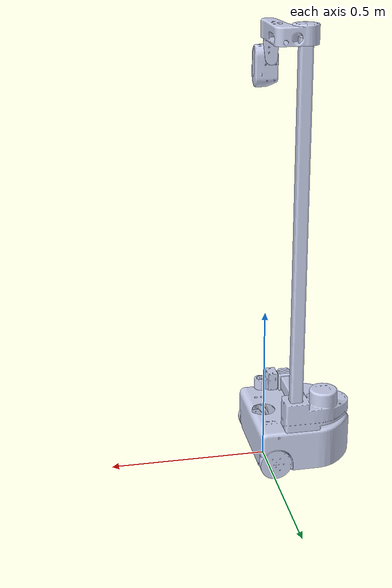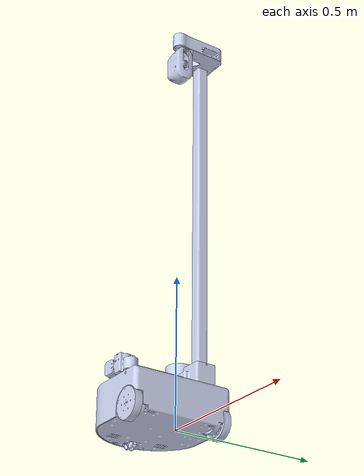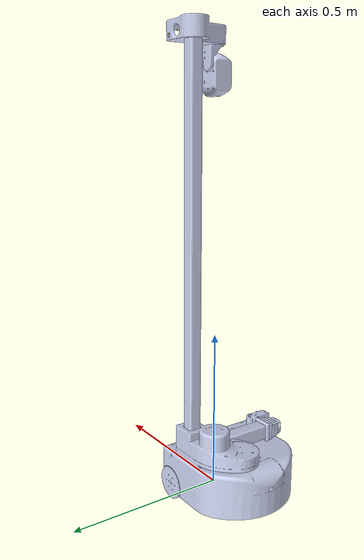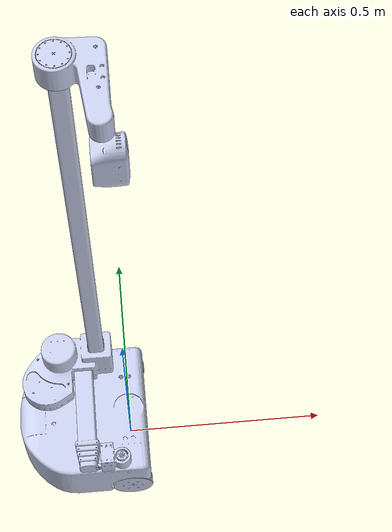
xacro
<?xml version="1.0"?>
<robot xmlns:xacro="http://www.ros.org/wiki/xacro" name="stretch_main">
  <xacro:property name="M_PI" value="3.1415926535897931" />
  <xacro:property name="joint_damping" value="21.75"/>
  <xacro:property name="joint_friction" value="10.48"/>
  <xacro:property name="joint_spring_stiffness" value="0"/>
  <xacro:property name="joint_spring_reference" value="0"/>

  <link
    name="base_link">
    <inertial>
      <origin
        xyz="-0.109461304328163 -0.000741018909047708 0.0914915269429946"
        rpy="0 0 0" />
      <mass
        value="1.0723782659782" />
      <inertia
        ixx="0.00310580907710135"
        ixy="1.5182848191076E-06"
        ixz="0.00041690466732394"
        iyy="0.00433798719991832"
        iyz="1.33487716258445E-05"
        izz="0.0037204727467362" />
    </inertial>
    <visual>
      <origin
        xyz="0 0 0"
        rpy="0 0 0" />
      <geometry>
        <mesh
          filename="package://stretch_description/meshes/base_link.STL" />
      </geometry>
      <material
        name="">
        <color
          rgba="0.792156862745098 0.819607843137255 0.933333333333333 1" />
      </material>
    </visual>
    <collision>
      <origin
        xyz="0 0 0"
        rpy="0 0 0" />
      <geometry>
        <mesh
          filename="package://stretch_description/meshes/base_link.STL" />
      </geometry>
    </collision>
  </link>

  <link
    name="link_right_wheel">
    <inertial>
      <origin
        xyz="1.25554620866719E-07 3.54748938447003E-07 0.0239581106165018"
        rpy="0 0 0" />
      <mass
        value="0.01" />
      <inertia
        ixx="0.001"
        ixy="0"
        ixz="0"
        iyy="0.001"
        iyz="0"
        izz="0.001" />
    </inertial>
    <visual>
      <origin
        xyz="0 0 0"
        rpy="0 0 0" />
      <geometry>
        <mesh
          filename="package://stretch_description/meshes/link_right_wheel.STL" />
      </geometry>
      <material
        name="">
        <color
          rgba="0.792156862745098 0.819607843137255 0.933333333333333 1" />
      </material>
    </visual>
    <collision>
      <origin
        xyz="0 0 0"
        rpy="0 0 0" />
      <geometry>
        <mesh
          filename="package://stretch_description/meshes/link_right_wheel.STL" />
      </geometry>
    </collision>
  </link>

  <joint
    name="joint_right_wheel"
    type="continuous">
    <origin
      xyz="-0.00300000000000034 -0.15765 0.0508000000000004"
      rpy="-1.57079632679489 -1.11022302462516E-16 7.28583859910277E-17" />
    <parent
      link="base_link" />
    <child
      link="link_right_wheel" />
    <axis
      xyz="0 0 1" />
    <dynamics damping="${joint_damping}" friction="${joint_friction}" spring_reference="${joint_spring_reference}" spring_stiffness="{joint_spring_stiffness}"/>
  </joint>

  <link
    name="link_left_wheel">
    <inertial>
      <origin
        xyz="1.2555462092223E-07 -3.54748938502514E-07 -0.0239581106165035"
        rpy="0 0 0" />
      <mass
        value="0.01" />
      <inertia
        ixx="0.001"
        ixy="0"
        ixz="0"
        iyy="0.001"
        iyz="0"
        izz="0.001" />
    </inertial>
    <visual>
      <origin
        xyz="0 0 0"
        rpy="0 0 0" />
      <geometry>
        <mesh
          filename="package://stretch_description/meshes/link_left_wheel.STL" />
      </geometry>
      <material
        name="">
        <color
          rgba="0.792156862745098 0.819607843137255 0.933333333333333 1" />
      </material>
    </visual>
    <collision>
      <origin
        xyz="0 0 0"
        rpy="0 0 0" />
      <geometry>
        <mesh
          filename="package://stretch_description/meshes/link_left_wheel.STL" />
      </geometry>
    </collision>
  </link>

  <joint
    name="joint_left_wheel"
    type="continuous">
    <origin
      xyz="-0.00300000000001899 0.15765 0.0507999999999994"
      rpy="-1.5707963267949 3.16227047920818E-31 7.88745438253713E-16" />
    <parent
      link="base_link" />
    <child
      link="link_left_wheel" />
    <axis
      xyz="0 0 1" />
    <dynamics damping="${joint_damping}" friction="${joint_friction}" spring_reference="${joint_spring_reference}" spring_stiffness="{joint_spring_stiffness}"/>
  </joint>

  <link name="caster_link">
    <collision>
      <geometry>
        <sphere radius="0.032"/>
      </geometry>
      <origin rpy="0 0 0" xyz="0 0 0"/>
      <surface>
        <friction>
          <ode>
            <mu>0</mu>
            <mu2>0</mu2>
            <slip1>1.0</slip1>
            <slip2>1.0</slip2>
          </ode>
        </friction>
      </surface>
    </collision>
    <visual>
      <origin
        xyz="0 0 0"
        rpy="0 0 0" />
      <geometry>
        <mesh
          filename="package://stretch_description/meshes/omni_wheel_m.STL" />
      </geometry>
      <material
        name="">
        <color
          rgba="0.792156862745098 0.819607843137255 0.933333333333333 1" />
      </material>
    </visual>
    <inertial>
      <mass value="0.01" />
      <origin xyz="0 0 0" />
      <inertia
        ixx="0.001"
        ixy="0"
        ixz="0"
        iyy="0.001"
        iyz="0"
        izz="0.001" />
    </inertial>
  </link>

  <joint name="caster_joint" type="fixed">
    <parent link="base_link"/>
    <child link="caster_link"/>
    <origin xyz="-0.245 0.0 0.032" rpy="${-M_PI/2} 0 0"/>
    <axis xyz="0 0 1" />
  </joint>

  <link
    name="link_mast">
    <inertial>
      <origin
        xyz="0.00755818572975822 0.773971284176834 0.00647313086620024"
        rpy="0 0 0" />
      <mass
        value="0.749143203376401" />
      <inertia
        ixx="0.0709854511954588"
        ixy="-0.00433428742758457"
        ixz="-0.000186110788697573"
        iyy="0.000437922053342648"
        iyz="-0.00288788257713431"
        izz="0.071104808501661" />
    </inertial>
    <visual>
      <origin
        xyz="0 0 0"
        rpy="0 0 0" />
      <geometry>
        <mesh
          filename="package://stretch_description/meshes/link_mast.STL" />
      </geometry>
      <material
        name="">
        <color
          rgba="0.792156862745098 0.819607843137255 0.933333333333333 1" />
      </material>
    </visual>
    <collision>
      <origin
        xyz="0 0 0"
        rpy="0 0 0" />
      <geometry>
        <mesh
          filename="package://stretch_description/meshes/link_mast.STL" />
      </geometry>
    </collision>
  </link>

  <joint
    name="joint_mast"
    type="fixed">
    <origin
      xyz="-0.07 0.134999999999998 0.0284000000000001"
      rpy="1.5707963267949 0 0.00925318926571245" />
    <parent
      link="base_link" />
    <child
      link="link_mast" />
    <axis
      xyz="0 0 0" />
  </joint>

  <link
    name="link_lift">
    <inertial>
      <origin
        xyz="-0.0547636346252869 0.0380939689802074 0.00933159404448308"
        rpy="0 0 0" />
      <mass
        value="0.444820831236007" />
      <inertia
        ixx="0.000567192946271367"
        ixy="-0.00024607534789508"
        ixz="-0.000128108442260574"
        iyy="0.00127108364478659"
        iyz="7.61916855070339E-06"
        izz="0.00137296635099006" />
    </inertial>
    <visual>
      <origin
        xyz="0 0 0"
        rpy="0 0 0" />
      <geometry>
        <mesh
          filename="package://stretch_description/meshes/link_lift.STL" />
      </geometry>
      <material
        name="">
        <color
          rgba="0.792156862745098 0.819607843137255 0.933333333333333 1" />
      </material>
    </visual>
    <collision>
      <origin
        xyz="0 0 0"
        rpy="0 0 0" />
      <geometry>
        <mesh
          filename="package://stretch_description/meshes/link_lift.STL" />
      </geometry>
    </collision>
  </link>

  <joint
    name="joint_lift"
    type="prismatic">
    <origin
      xyz="-0.0369217062323472 0.165471199999996 -0.000341653286793524"
      rpy="-1.57079632679552 1.5615431375292 -6.2942004366467E-13" />
    <parent
      link="link_mast" />
    <child
      link="link_lift" />
    <axis
	xyz="0 0 1" />
  <!-- for now, hand copied range_m, from lift, from ~/repos/stretch_fleet/stretch-re1-1001/stretch_re1_factory_params.yaml -->
  <!-- copied value did not reach the top of mesh model with GUI sliders and RViz -->
  <limit effort="100" lower="0.0" upper="1.1" velocity="1.0"/>
  </joint>

  <link
    name="link_arm_l4">
    <inertial>
      <origin
        xyz="-1.61247276464493E-06 1.54715589201215E-06 -0.0953252706040035"
        rpy="0 0 0" />
      <mass
        value="0.0676525455789735" />
      <inertia
        ixx="0.000122002023066796"
        ixy="7.29593356230121E-13"
        ixz="9.63170353371061E-09"
        iyy="0.000122002023127152"
        iyz="-9.24154949889042E-09"
        izz="1.46043439809638E-12" />
    </inertial>
    <visual>
      <origin
        xyz="0 0 0"
        rpy="0 0 0" />
      <geometry>
        <mesh
          filename="package://stretch_description/meshes/link_arm_l4.STL" />
      </geometry>
      <material
        name="">
        <color
          rgba="0.792156862745098 0.819607843137255 0.933333333333333 1" />
      </material>
    </visual>
    <collision>
      <origin
        xyz="0 0 0"
        rpy="0 0 0" />
      <geometry>
        <mesh
          filename="package://stretch_description/meshes/link_arm_l4.STL" />
      </geometry>
    </collision>
  </link>

  <joint
    name="joint_arm_l4"
    type="fixed">
    <origin
      xyz="-0.25471 0 0"
      rpy="1.5708 -3.1019E-16 -1.5708" />
    <parent
      link="link_lift" />
    <child
      link="link_arm_l4" />
    <axis
      xyz="0 0 0" />
  </joint>

  <link
    name="link_arm_l3">
    <inertial>
      <origin
        xyz="-3.34873468621488E-07 4.7411336306924E-07 -0.0974069598289041"
        rpy="0 0 0" />
      <mass
        value="0.0626921047058405" />
      <inertia
        ixx="0.001"
        ixy="0"
        ixz="0"
        iyy="0.001"
        iyz="0"
        izz="0.001" />
    </inertial>
    <visual>
      <origin
        xyz="0 0 0"
        rpy="0 0 0" />
      <geometry>
        <mesh
          filename="package://stretch_description/meshes/link_arm_l3.STL" />
      </geometry>
      <material
        name="">
        <color
          rgba="0.792156862745098 0.819607843137255 0.933333333333333 1" />
      </material>
    </visual>
    <collision>
      <origin
        xyz="0 0 0"
        rpy="0 0 0" />
      <geometry>
        <mesh
          filename="package://stretch_description/meshes/link_arm_l3.STL" />
      </geometry>
    </collision>
  </link>

  <joint
    name="joint_arm_l3"
    type="prismatic">
    <origin
      xyz="0 0 0.013"
      rpy="3.5742E-16 3.2123E-16 -2.4565E-16" />
    <parent
      link="link_arm_l4" />
    <child
      link="link_arm_l3" />
    <axis
	xyz="0 0 1" />
    <limit effort="100" lower="0.0" upper="0.13" velocity="1.0"/>
  </joint>

  <link
    name="link_arm_l2">
    <inertial>
      <origin
        xyz="-3.31043560508615E-07 3.13422303999111E-07 -0.097255883541891"
        rpy="0 0 0" />
      <mass
        value="0.0569074368576238" />
      <inertia
        ixx="0.001"
        ixy="0"
        ixz="0"
        iyy="0.001"
        iyz="0"
        izz="0.001" />
    </inertial>
    <visual>
      <origin
        xyz="0 0 0"
        rpy="0 0 0" />
      <geometry>
        <mesh
          filename="package://stretch_description/meshes/link_arm_l2.STL" />
      </geometry>
      <material
        name="">
        <color
          rgba="0.792156862745098 0.819607843137255 0.933333333333333 1" />
      </material>
    </visual>
    <collision>
      <origin
        xyz="0 0 0"
        rpy="0 0 0" />
      <geometry>
        <mesh
          filename="package://stretch_description/meshes/link_arm_l2.STL" />
      </geometry>
    </collision>
  </link>

  <joint
    name="joint_arm_l2"
    type="prismatic">
    <origin
      xyz="0 0 0.013"
      rpy="2.91385731014123E-16 4.44300759504684E-17 3.25691080516352E-16" />
    <parent
      link="link_arm_l3" />
    <child
      link="link_arm_l2" />
    <axis
	xyz="0 0 1" />
    <limit effort="100" lower="0.0" upper="0.13" velocity="1.0"/>
  </joint>

  <link
    name="link_arm_l1">
    <inertial>
      <origin
        xyz="-3.36876635420591E-07 3.05876091066803E-07 -0.0969117032232756"
        rpy="0 0 0" />
      <mass
        value="0.0511763619538321" />
      <inertia
        ixx="0.001"
        ixy="0"
        ixz="0"
        iyy="0.001"
        iyz="0"
        izz="0.001" />
    </inertial>
    <visual>
      <origin
        xyz="0 0 0"
        rpy="0 0 0" />
      <geometry>
        <mesh
          filename="package://stretch_description/meshes/link_arm_l1.STL" />
      </geometry>
      <material
        name="">
        <color
          rgba="0.792156862745098 0.819607843137255 0.933333333333333 1" />
      </material>
    </visual>
    <collision>
      <origin
        xyz="0 0 0"
        rpy="0 0 0" />
      <geometry>
        <mesh
          filename="package://stretch_description/meshes/link_arm_l1.STL" />
      </geometry>
    </collision>
  </link>

  <joint
    name="joint_arm_l1"
    type="prismatic">
    <origin
      xyz="0 0 0.013"
      rpy="7.41596560408007E-17 1.33876788296791E-16 -2.44545873596083E-16" />
    <parent
      link="link_arm_l2" />
    <child
      link="link_arm_l1" />
    <axis
	xyz="0 0 1" />
    <limit effort="100" lower="0.0" upper="0.13" velocity="1.0"/>
  </joint>

  <link
    name="link_arm_l0">
    <inertial>
      <origin
        xyz="0.0230715049668191 -0.00195115833662818 -0.0360646347160285"
        rpy="0 0 0" />
      <mass
        value="0.101241250325294" />
      <inertia
        ixx="0.001"
        ixy="0"
        ixz="0"
        iyy="0.001"
        iyz="0"
        izz="0.001" />
    </inertial>
    <visual>
      <origin
        xyz="0 0 0"
        rpy="0 0 0" />
      <geometry>
        <mesh
          filename="package://stretch_description/meshes/link_arm_l0.STL" />
      </geometry>
      <material
        name="">
        <color
          rgba="0.792156862745098 0.819607843137255 0.933333333333333 1" />
      </material>
    </visual>
    <collision>
      <origin
        xyz="0 0 0"
        rpy="0 0 0" />
      <geometry>
        <mesh
          filename="package://stretch_description/meshes/link_arm_l0.STL" />
      </geometry>
    </collision>
  </link>

  <joint
    name="joint_arm_l0"
    type="prismatic">
    <origin
      xyz="0 0 -0.0137499999999938"
      rpy="-3.05317390622457E-16 -4.23236224076729E-16 -2.68425135229209E-17" />
    <parent
      link="link_arm_l1" />
    <child
      link="link_arm_l0" />
    <axis
	xyz="0 0 1" />
    <limit effort="100" lower="0.0" upper="0.13" velocity="1.0"/>
  </joint>

  <link
    name="link_wrist_yaw">
    <inertial>
      <origin
        xyz="-8.02795716750571E-06 1.93811447768422E-05 0.018946700595851"
        rpy="0 0 0" />
      <mass
        value="0.0405398981326229" />
      <inertia
        ixx="0.001"
        ixy="0"
        ixz="0"
        iyy="0.001"
        iyz="0"
        izz="0.001" />
    </inertial>
    <visual>
      <origin
        xyz="0 0 0"
        rpy="0 0 0" />
      <geometry>
        <mesh
          filename="package://stretch_description/meshes/link_wrist_yaw.STL" />
      </geometry>
      <material
        name="">
        <color
	        rgba="0.792156862745098 0.819607843137255 0.933333333333333 1" />
      </material>
    </visual>
    <collision>
      <origin
        xyz="0 0 0"
        rpy="0 0 0" />
      <geometry>
        <mesh
          filename="package://stretch_description/meshes/link_wrist_yaw.STL" />
      </geometry>
    </collision>
  </link>

  <joint
    name="joint_wrist_yaw"
    type="revolute">
    <origin
      xyz="0.083 -0.03075 0"
      rpy="1.5708 4.2595E-14 2.6415E-15" />
    <parent
      link="link_arm_l0" />
    <child
      link="link_wrist_yaw" />
    <axis
      xyz="0 0 -1" />
    <!--
      stowed to front ~225 deg, 3.15159 x 1.25 = 3.9395
      using 4.0
      stowed to back ~100 deg, 100 / 180 x 3.14159 = 1.7453
      using -1.75
    -->
    <limit effort="100" lower="-1.75" upper="4.0" velocity="1.0"/>
  </joint>

  <link
    name="link_head">
    <inertial>
      <origin
        xyz="0.0372933550588956 0.045509432985552 0.0281136801213409"
        rpy="0 0 0" />
      <mass
        value="0.129454717596498" />
      <inertia
        ixx="0.001"
        ixy="0"
        ixz="0"
        iyy="0.001"
        iyz="0"
        izz="0.001" />
    </inertial>
    <visual>
      <origin
        xyz="0 0 0"
        rpy="0 0 0" />
      <geometry>
        <mesh
          filename="package://stretch_description/meshes/link_head.STL" />
      </geometry>
      <material
        name="">
        <color
          rgba="0.792156862745098 0.819607843137255 0.933333333333333 1" />
      </material>
    </visual>
    <collision>
      <origin
        xyz="0 0 0"
        rpy="0 0 0" />
      <geometry>
        <mesh
          filename="package://stretch_description/meshes/link_head.STL" />
      </geometry>
    </collision>
  </link>

  <joint
    name="joint_head"
    type="fixed">
    <origin
      xyz="0 1.33 0"
      rpy="1.5708 -1.5615 3.1416" />
    <parent
      link="link_mast" />
    <child
      link="link_head" />
    <axis
      xyz="0 0 0" />
  </joint>

  <link
    name="link_head_pan">
    <inertial>
      <origin
        xyz="-0.00116200255310878 0.0130365621706306 0.00137629842298681"
        rpy="0 0 0" />
      <mass
        value="0.035858341182617" />
      <inertia
        ixx="0.001"
        ixy="0"
        ixz="0"
        iyy="0.001"
        iyz="0"
        izz="0.001" />
    </inertial>
    <visual>
      <origin
        xyz="0 0 0"
        rpy="0 0 0" />
      <geometry>
        <mesh
          filename="package://stretch_description/meshes/link_head_pan.STL" />
      </geometry>
      <material
        name="">
        <color
          rgba="0.792156862745098 0.819607843137255 0.933333333333333 1" />
      </material>
    </visual>
    <collision>
      <origin
        xyz="0 0 0"
        rpy="0 0 0" />
      <geometry>
        <mesh
          filename="package://stretch_description/meshes/link_head_pan.STL" />
      </geometry>
    </collision>
  </link>

  <joint
    name="joint_head_pan"
    type="revolute">
    <origin
      xyz="0.135 0.0731 -0.003"
      rpy="-6.4986E-15 -6.068E-24 1.5708" />
    <parent
      link="link_head" />
    <child
      link="link_head_pan" />
    <axis
	xyz="0 0 1" />
    <!-- unconstrained range for now -->
    <limit effort="100" lower="-3.9" upper="1.5" velocity="1.0"/>
  </joint>

  <link
    name="link_head_tilt">
    <inertial>
      <origin
        xyz="0.00920211049011871 -0.0279724762416447 0.0306580436227023"
        rpy="0 0 0" />
      <mass
        value="0.0701242408063442" />
      <inertia
        ixx="0.001"
        ixy="0"
        ixz="0"
        iyy="0.001"
        iyz="0"
        izz="0.001" />
    </inertial>
    <visual>
      <origin
        xyz="0 0 0"
        rpy="0 0 0" />
      <geometry>
        <mesh
          filename="package://stretch_description/meshes/link_head_tilt.STL" />
      </geometry>
      <material
        name="">
        <color
          rgba="0.792156862745098 0.819607843137255 0.933333333333333 1" />
      </material>
    </visual>
    <collision>
      <origin
        xyz="0 0 0"
        rpy="0 0 0" />
      <geometry>
        <mesh
          filename="package://stretch_description/meshes/link_head_tilt.STL" />
      </geometry>
    </collision>
  </link>

  <joint
    name="joint_head_tilt"
    type="revolute">
    <origin
      xyz="-0.0013 0.027507 -0.053311"
      rpy="1.5708 6.068E-24 -2.5165E-15" />
    <parent
      link="link_head_pan" />
    <child
      link="link_head_tilt" />
    <axis
      xyz="0 0 1" />
    <!-- unconstrained range for now -->
    <limit effort="100" lower="-1.53" upper="0.79" velocity="1.0"/>
  </joint>

</robot>
